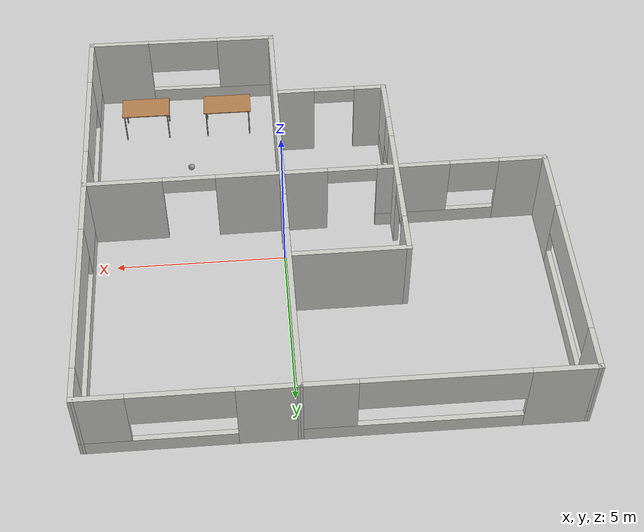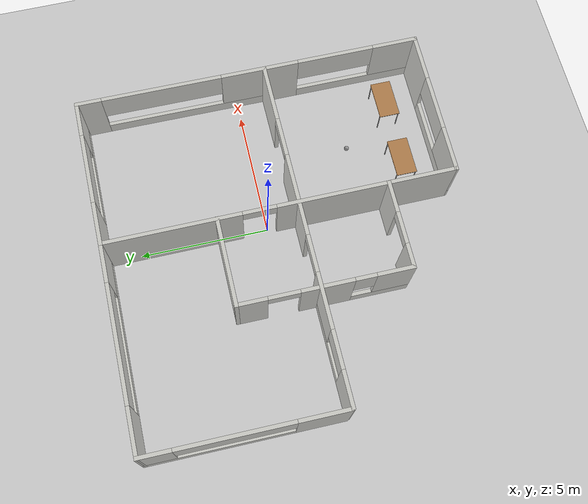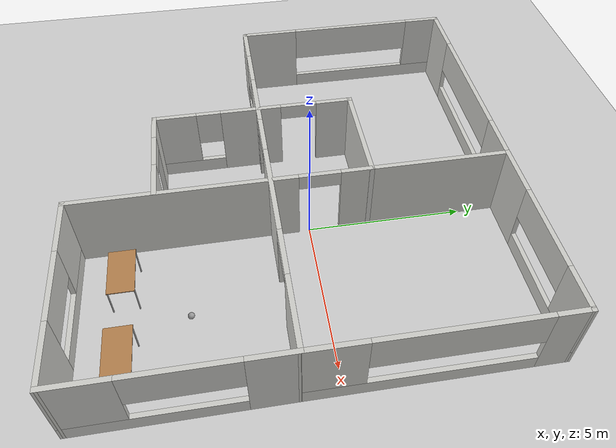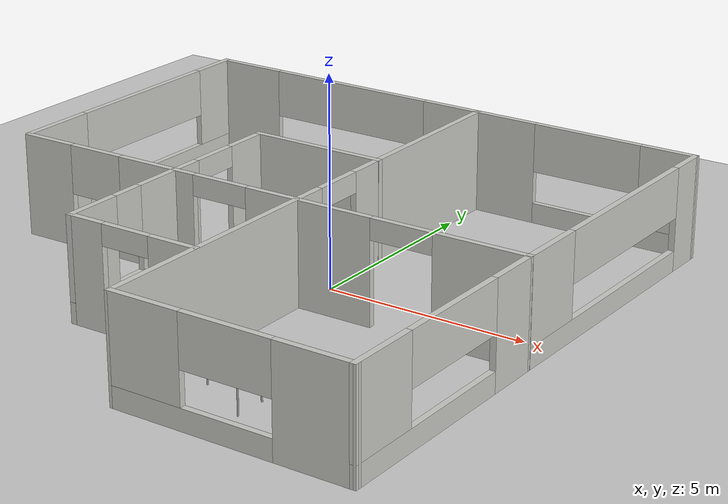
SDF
<sdf version="1.7">
 <world name="default">
  <model name="ground_plane">
   <static>1</static>
   <link name="link">
    <collision name="collision">
     <geometry><plane><normal>0 0 1</normal><size>100 100</size></plane></geometry>
     <surface>
      <contact><collide_bitmask>65535</collide_bitmask></contact>
      <friction><ode><mu>100</mu><mu2>50</mu2></ode></friction>
     </surface>
    </collision>
    <visual name="visual">
     <cast_shadows>0</cast_shadows>
     <geometry><plane><normal>0 0 1</normal><size>100 100</size></plane></geometry>
     <material>
      <script><uri>file://media/materials/scripts/gazebo.material</uri><name>Gazebo/Grey</name></script>
     </material>
    </visual>
   </link>
  </model>
  <model name="floor">
   <pose>-1.0352 -0.48407 0 0 -0 0</pose>
   <link name="Wall_0">
    <collision name="Wall_0_Collision">
     <geometry><box><size>3.5 0.15 2.5</size></box></geometry>
     <pose>0 0 1.25 0 -0 0</pose>
    </collision>
    <visual name="Wall_0_Visual">
     <pose>0 0 1.25 0 -0 0</pose>
     <geometry><box><size>3.5 0.15 2.5</size></box></geometry>
     <material>
      <script><uri>file://media/materials/scripts/gazebo.material</uri><name>Gazebo/CeilingTiled</name></script>
      <ambient>0.921569 0.807843 0.615686 1</ambient>
     </material>
     <meta><layer>0</layer></meta>
    </visual>
    <pose>-0.680453 2.40138 0 0 -0 0</pose>
   </link>
   <link name="Wall_10">
    <pose>3.86966 6.71461 0 0 -0 0</pose>
    <visual name="Wall_10_Visual_0">
     <pose>-2.10615 0 1.25 0 -0 0</pose>
     <geometry><box><size>1.71925 0.15 2.5</size></box></geometry>
     <material>
      <script><uri>file://media/materials/scripts/gazebo.material</uri><name>Gazebo/CeilingTiled</name></script>
      <ambient>0.996078 0.47451 0.0196078 1</ambient>
     </material>
     <meta><layer>0</layer></meta>
    </visual>
    <collision name="Wall_10_Collision_0">
     <geometry><box><size>1.71925 0.15 2.5</size></box></geometry>
     <pose>-2.10615 0 1.25 0 -0 0</pose>
    </collision>
    <visual name="Wall_10_Visual_1">
     <pose>0.859627 0 0.25 0 -0 0</pose>
     <geometry><box><size>4.2123 0.15 0.5</size></box></geometry>
     <material>
      <script><uri>file://media/materials/scripts/gazebo.material</uri><name>Gazebo/CeilingTiled</name></script>
      <ambient>0.996078 0.47451 0.0196078 1</ambient>
     </material>
     <meta><layer>0</layer></meta>
    </visual>
    <collision name="Wall_10_Collision_1">
     <geometry><box><size>4.2123 0.15 0.5</size></box></geometry>
     <pose>0.859627 0 0.25 0 -0 0</pose>
    </collision>
    <visual name="Wall_10_Visual_2">
     <pose>2.25525 0 1.5 0 -0 0</pose>
     <geometry><box><size>1.42105 0.15 2</size></box></geometry>
     <material>
      <script><uri>file://media/materials/scripts/gazebo.material</uri><name>Gazebo/CeilingTiled</name></script>
      <ambient>0.996078 0.47451 0.0196078 1</ambient>
     </material>
     <meta><layer>0</layer></meta>
    </visual>
    <collision name="Wall_10_Collision_2">
     <geometry><box><size>1.42105 0.15 2</size></box></geometry>
     <pose>2.25525 0 1.5 0 -0 0</pose>
    </collision>
    <visual name="Wall_10_Visual_3">
     <pose>0.1491 0 1.9 0 -0 0</pose>
     <geometry><box><size>2.79124 0.15 1.2</size></box></geometry>
     <material>
      <script><uri>file://media/materials/scripts/gazebo.material</uri><name>Gazebo/CeilingTiled</name></script>
      <ambient>0.996078 0.47451 0.0196078 1</ambient>
     </material>
     <meta><layer>0</layer></meta>
    </visual>
    <collision name="Wall_10_Collision_3">
     <geometry><box><size>2.79124 0.15 1.2</size></box></geometry>
     <pose>0.1491 0 1.9 0 -0 0</pose>
    </collision>
   </link>
   <link name="Wall_11">
    <pose>6.74514 3.02848 0 0 0 -1.57495</pose>
    <visual name="Wall_11_Visual_0">
     <pose>-3.24419 0 1.25 0 -0 0</pose>
     <geometry><box><size>1.03393 0.15 2.5</size></box></geometry>
     <material>
      <script><uri>file://media/materials/scripts/gazebo.material</uri><name>Gazebo/CeilingTiled</name></script>
      <ambient>0.996078 0.47451 0.0196078 1</ambient>
     </material>
     <meta><layer>0</layer></meta>
    </visual>
    <collision name="Wall_11_Collision_0">
     <geometry><box><size>1.03393 0.15 2.5</size></box></geometry>
     <pose>-3.24419 0 1.25 0 -0 0</pose>
    </collision>
    <visual name="Wall_11_Visual_1">
     <pose>0.516965 0 0.25 0 -0 0</pose>
     <geometry><box><size>6.48838 0.15 0.5</size></box></geometry>
     <material>
      <script><uri>file://media/materials/scripts/gazebo.material</uri><name>Gazebo/CeilingTiled</name></script>
      <ambient>0.996078 0.47451 0.0196078 1</ambient>
     </material>
     <meta><layer>0</layer></meta>
    </visual>
    <collision name="Wall_11_Collision_1">
     <geometry><box><size>6.48838 0.15 0.5</size></box></geometry>
     <pose>0.516965 0 0.25 0 -0 0</pose>
    </collision>
    <visual name="Wall_11_Visual_2">
     <pose>2.86792 0 1.5 0 -0 0</pose>
     <geometry><box><size>1.78646 0.15 2</size></box></geometry>
     <material>
      <script><uri>file://media/materials/scripts/gazebo.material</uri><name>Gazebo/CeilingTiled</name></script>
      <ambient>0.996078 0.47451 0.0196078 1</ambient>
     </material>
     <meta><layer>0</layer></meta>
    </visual>
    <collision name="Wall_11_Collision_2">
     <geometry><box><size>1.78646 0.15 2</size></box></geometry>
     <pose>2.86792 0 1.5 0 -0 0</pose>
    </collision>
    <visual name="Wall_11_Visual_3">
     <pose>-0.376266 0 1.9 0 -0 0</pose>
     <geometry><box><size>4.70192 0.15 1.2</size></box></geometry>
     <material>
      <script><uri>file://media/materials/scripts/gazebo.material</uri><name>Gazebo/CeilingTiled</name></script>
      <ambient>0.996078 0.47451 0.0196078 1</ambient>
     </material>
     <meta><layer>0</layer></meta>
    </visual>
    <collision name="Wall_11_Collision_3">
     <geometry><box><size>4.70192 0.15 1.2</size></box></geometry>
     <pose>-0.376266 0 1.9 0 -0 0</pose>
    </collision>
   </link>
   <link name="Wall_13">
    <pose>-6.76045 3.04378 0 0 -0 1.5708</pose>
    <visual name="Wall_13_Visual_0">
     <pose>-2.80286 0 1.25 0 -0 0</pose>
     <geometry><box><size>1.94712 0.15 2.5</size></box></geometry>
     <material>
      <script><uri>file://media/materials/scripts/gazebo.material</uri><name>Gazebo/CeilingTiled</name></script>
      <ambient>0.996078 0.47451 0.0196078 1</ambient>
     </material>
     <meta><layer>0</layer></meta>
    </visual>
    <collision name="Wall_13_Collision_0">
     <geometry><box><size>1.94712 0.15 2.5</size></box></geometry>
     <pose>-2.80286 0 1.25 0 -0 0</pose>
    </collision>
    <visual name="Wall_13_Visual_1">
     <pose>0.97356 0 0.25 0 -0 0</pose>
     <geometry><box><size>5.60571 0.15 0.5</size></box></geometry>
     <material>
      <script><uri>file://media/materials/scripts/gazebo.material</uri><name>Gazebo/CeilingTiled</name></script>
      <ambient>0.996078 0.47451 0.0196078 1</ambient>
     </material>
     <meta><layer>0</layer></meta>
    </visual>
    <collision name="Wall_13_Collision_1">
     <geometry><box><size>5.60571 0.15 0.5</size></box></geometry>
     <pose>0.97356 0 0.25 0 -0 0</pose>
    </collision>
    <visual name="Wall_13_Visual_2">
     <pose>3.1335 0 1.5 0 -0 0</pose>
     <geometry><box><size>1.28584 0.15 2</size></box></geometry>
     <material>
      <script><uri>file://media/materials/scripts/gazebo.material</uri><name>Gazebo/CeilingTiled</name></script>
      <ambient>0.996078 0.47451 0.0196078 1</ambient>
     </material>
     <meta><layer>0</layer></meta>
    </visual>
    <collision name="Wall_13_Collision_2">
     <geometry><box><size>1.28584 0.15 2</size></box></geometry>
     <pose>3.1335 0 1.5 0 -0 0</pose>
    </collision>
    <visual name="Wall_13_Visual_3">
     <pose>0.330641 0 1.9 0 -0 0</pose>
     <geometry><box><size>4.31987 0.15 1.2</size></box></geometry>
     <material>
      <script><uri>file://media/materials/scripts/gazebo.material</uri><name>Gazebo/CeilingTiled</name></script>
      <ambient>0.996078 0.47451 0.0196078 1</ambient>
     </material>
     <meta><layer>0</layer></meta>
    </visual>
    <collision name="Wall_13_Collision_3">
     <geometry><box><size>4.31987 0.15 1.2</size></box></geometry>
     <pose>0.330641 0 1.9 0 -0 0</pose>
    </collision>
   </link>
   <link name="Wall_14">
    <pose>-2.93667 6.7299 0 0 0 -0.004</pose>
    <visual name="Wall_14_Visual_0">
     <pose>-2.97598 0 1.25 0 -0 0</pose>
     <geometry><box><size>1.84566 0.15 2.5</size></box></geometry>
     <material>
      <script><uri>file://media/materials/scripts/gazebo.material</uri><name>Gazebo/CeilingTiled</name></script>
      <ambient>0.996078 0.47451 0.0196078 1</ambient>
     </material>
     <meta><layer>0</layer></meta>
    </visual>
    <collision name="Wall_14_Collision_0">
     <geometry><box><size>1.84566 0.15 2.5</size></box></geometry>
     <pose>-2.97598 0 1.25 0 -0 0</pose>
    </collision>
    <visual name="Wall_14_Visual_1">
     <pose>0.922833 0 0.25 0 -0 0</pose>
     <geometry><box><size>5.95195 0.15 0.5</size></box></geometry>
     <material>
      <script><uri>file://media/materials/scripts/gazebo.material</uri><name>Gazebo/CeilingTiled</name></script>
      <ambient>0.996078 0.47451 0.0196078 1</ambient>
     </material>
     <meta><layer>0</layer></meta>
    </visual>
    <collision name="Wall_14_Collision_1">
     <geometry><box><size>5.95195 0.15 0.5</size></box></geometry>
     <pose>0.922833 0 0.25 0 -0 0</pose>
    </collision>
    <visual name="Wall_14_Visual_2">
     <pose>3.15291 0 1.5 0 -0 0</pose>
     <geometry><box><size>1.49179 0.15 2</size></box></geometry>
     <material>
      <script><uri>file://media/materials/scripts/gazebo.material</uri><name>Gazebo/CeilingTiled</name></script>
      <ambient>0.996078 0.47451 0.0196078 1</ambient>
     </material>
     <meta><layer>0</layer></meta>
    </visual>
    <collision name="Wall_14_Collision_2">
     <geometry><box><size>1.49179 0.15 2</size></box></geometry>
     <pose>3.15291 0 1.5 0 -0 0</pose>
    </collision>
    <visual name="Wall_14_Visual_3">
     <pose>0.176935 0 1.9 0 -0 0</pose>
     <geometry><box><size>4.46016 0.15 1.2</size></box></geometry>
     <material>
      <script><uri>file://media/materials/scripts/gazebo.material</uri><name>Gazebo/CeilingTiled</name></script>
      <ambient>0.996078 0.47451 0.0196078 1</ambient>
     </material>
     <meta><layer>0</layer></meta>
    </visual>
    <collision name="Wall_14_Collision_3">
     <geometry><box><size>4.46016 0.15 1.2</size></box></geometry>
     <pose>0.176935 0 1.9 0 -0 0</pose>
    </collision>
   </link>
   <link name="Wall_16">
    <pose>-2.35545 -0.856476 0 0 0 -1.5708</pose>
    <visual name="Wall_16_Visual_0">
     <pose>-2.72153 0 1.25 0 -0 0</pose>
     <geometry><box><size>1.22295 0.15 2.5</size></box></geometry>
     <material>
      <script><uri>file://media/materials/scripts/gazebo.material</uri><name>Gazebo/CeilingTiled</name></script>
      <ambient>0.996078 0.47451 0.0196078 1</ambient>
     </material>
     <meta><layer>0</layer></meta>
    </visual>
    <collision name="Wall_16_Collision_0">
     <geometry><box><size>1.22295 0.15 2.5</size></box></geometry>
     <pose>-2.72153 0 1.25 0 -0 0</pose>
    </collision>
    <visual name="Wall_16_Visual_1">
     <pose>0.091031 0 1.25 0 -0 0</pose>
     <geometry><box><size>2.00077 0.15 2.5</size></box></geometry>
     <material>
      <script><uri>file://media/materials/scripts/gazebo.material</uri><name>Gazebo/CeilingTiled</name></script>
      <ambient>0.996078 0.47451 0.0196078 1</ambient>
     </material>
     <meta><layer>0</layer></meta>
    </visual>
    <collision name="Wall_16_Collision_1">
     <geometry><box><size>2.00077 0.15 2.5</size></box></geometry>
     <pose>0.091031 0 1.25 0 -0 0</pose>
    </collision>
    <visual name="Wall_16_Visual_2">
     <pose>2.21221 0 0.25 0 -0 0</pose>
     <geometry><box><size>2.24159 0.15 0.5</size></box></geometry>
     <material>
      <script><uri>file://media/materials/scripts/gazebo.material</uri><name>Gazebo/CeilingTiled</name></script>
      <ambient>0.996078 0.47451 0.0196078 1</ambient>
     </material>
     <meta><layer>0</layer></meta>
    </visual>
    <collision name="Wall_16_Collision_2">
     <geometry><box><size>2.24159 0.15 0.5</size></box></geometry>
     <pose>2.21221 0 0.25 0 -0 0</pose>
    </collision>
    <visual name="Wall_16_Visual_3">
     <pose>2.61221 0 1.5 0 -0 0</pose>
     <geometry><box><size>1.44159 0.15 2</size></box></geometry>
     <material>
      <script><uri>file://media/materials/scripts/gazebo.material</uri><name>Gazebo/CeilingTiled</name></script>
      <ambient>0.996078 0.47451 0.0196078 1</ambient>
     </material>
     <meta><layer>0</layer></meta>
    </visual>
    <collision name="Wall_16_Collision_3">
     <geometry><box><size>1.44159 0.15 2</size></box></geometry>
     <pose>2.61221 0 1.5 0 -0 0</pose>
    </collision>
    <visual name="Wall_16_Visual_4">
     <pose>1.49142 0 1.9 0 -0 0</pose>
     <geometry><box><size>0.8 0.15 1.2</size></box></geometry>
     <material>
      <script><uri>file://media/materials/scripts/gazebo.material</uri><name>Gazebo/CeilingTiled</name></script>
      <ambient>0.996078 0.47451 0.0196078 1</ambient>
     </material>
     <meta><layer>0</layer></meta>
    </visual>
    <collision name="Wall_16_Collision_4">
     <geometry><box><size>0.8 0.15 1.2</size></box></geometry>
     <pose>1.49142 0 1.9 0 -0 0</pose>
    </collision>
    <visual name="Wall_16_Visual_5">
     <pose>-1.5097 0 2.25 0 -0 0</pose>
     <geometry><box><size>1.2007 0.15 0.5</size></box></geometry>
     <material>
      <script><uri>file://media/materials/scripts/gazebo.material</uri><name>Gazebo/CeilingTiled</name></script>
      <ambient>0.996078 0.47451 0.0196078 1</ambient>
     </material>
     <meta><layer>0</layer></meta>
    </visual>
    <collision name="Wall_16_Collision_5">
     <geometry><box><size>1.2007 0.15 0.5</size></box></geometry>
     <pose>-1.5097 0 2.25 0 -0 0</pose>
    </collision>
   </link>
   <link name="Wall_19">
    <pose>-0.680453 -4.11433 0 0 -0 0</pose>
    <visual name="Wall_19_Visual_0">
     <pose>-1.25768 0 1.25 0 -0 0</pose>
     <geometry><box><size>0.984642 0.15 2.5</size></box></geometry>
     <material>
      <script><uri>file://media/materials/scripts/gazebo.material</uri><name>Gazebo/CeilingTiled</name></script>
      <ambient>0.921569 0.807843 0.615686 1</ambient>
     </material>
     <meta><layer>0</layer></meta>
    </visual>
    <collision name="Wall_19_Collision_0">
     <geometry><box><size>0.984642 0.15 2.5</size></box></geometry>
     <pose>-1.25768 0 1.25 0 -0 0</pose>
    </collision>
    <visual name="Wall_19_Visual_1">
     <pose>1.1158 0 1.25 0 -0 0</pose>
     <geometry><box><size>1.2684 0.15 2.5</size></box></geometry>
     <material>
      <script><uri>file://media/materials/scripts/gazebo.material</uri><name>Gazebo/CeilingTiled</name></script>
      <ambient>0.921569 0.807843 0.615686 1</ambient>
     </material>
     <meta><layer>0</layer></meta>
    </visual>
    <collision name="Wall_19_Collision_1">
     <geometry><box><size>1.2684 0.15 2.5</size></box></geometry>
     <pose>1.1158 0 1.25 0 -0 0</pose>
    </collision>
    <visual name="Wall_19_Visual_2">
     <pose>-0.141879 0 2.25 0 -0 0</pose>
     <geometry><box><size>1.24696 0.15 0.5</size></box></geometry>
     <material>
      <script><uri>file://media/materials/scripts/gazebo.material</uri><name>Gazebo/CeilingTiled</name></script>
      <ambient>0.921569 0.807843 0.615686 1</ambient>
     </material>
     <meta><layer>0</layer></meta>
    </visual>
    <collision name="Wall_19_Collision_2">
     <geometry><box><size>1.24696 0.15 0.5</size></box></geometry>
     <pose>-0.141879 0 2.25 0 -0 0</pose>
    </collision>
   </link>
   <link name="Wall_6">
    <pose>-5e-06 -0.68823 0 0 -0 0.004545</pose>
    <visual name="Wall_6_Visual_0">
     <pose>-6.09809 0 1.25 0 -0 0</pose>
     <geometry><box><size>1.41365 0.15 2.5</size></box></geometry>
     <material>
      <script><uri>file://media/materials/scripts/gazebo.material</uri><name>Gazebo/CeilingTiled</name></script>
      <ambient>0.921569 0.807843 0.615686 1</ambient>
     </material>
     <meta><layer>0</layer></meta>
    </visual>
    <collision name="Wall_6_Collision_0">
     <geometry><box><size>1.41365 0.15 2.5</size></box></geometry>
     <pose>-6.09809 0 1.25 0 -0 0</pose>
    </collision>
    <visual name="Wall_6_Visual_1">
     <pose>1.30078 0 1.25 0 -0 0</pose>
     <geometry><box><size>3.27649 0.15 2.5</size></box></geometry>
     <material>
      <script><uri>file://media/materials/scripts/gazebo.material</uri><name>Gazebo/CeilingTiled</name></script>
      <ambient>0.921569 0.807843 0.615686 1</ambient>
     </material>
     <meta><layer>0</layer></meta>
    </visual>
    <collision name="Wall_6_Collision_1">
     <geometry><box><size>3.27649 0.15 2.5</size></box></geometry>
     <pose>1.30078 0 1.25 0 -0 0</pose>
    </collision>
    <visual name="Wall_6_Visual_2">
     <pose>5.64099 0 1.25 0 -0 0</pose>
     <geometry><box><size>2.32786 0.15 2.5</size></box></geometry>
     <material>
      <script><uri>file://media/materials/scripts/gazebo.material</uri><name>Gazebo/CeilingTiled</name></script>
      <ambient>0.921569 0.807843 0.615686 1</ambient>
     </material>
     <meta><layer>0</layer></meta>
    </visual>
    <collision name="Wall_6_Collision_2">
     <geometry><box><size>2.32786 0.15 2.5</size></box></geometry>
     <pose>5.64099 0 1.25 0 -0 0</pose>
    </collision>
    <visual name="Wall_6_Visual_3">
     <pose>-3.59193 0 0.25 0 -0 0</pose>
     <geometry><box><size>3.59867 0.15 0.5</size></box></geometry>
     <material>
      <script><uri>file://media/materials/scripts/gazebo.material</uri><name>Gazebo/CeilingTiled</name></script>
      <ambient>0.921569 0.807843 0.615686 1</ambient>
     </material>
     <meta><layer>0</layer></meta>
    </visual>
    <collision name="Wall_6_Collision_3">
     <geometry><box><size>3.59867 0.15 0.5</size></box></geometry>
     <pose>-3.59193 0 0.25 0 -0 0</pose>
    </collision>
    <visual name="Wall_6_Visual_4">
     <pose>-2.86816 0 1.5 0 -0 0</pose>
     <geometry><box><size>2.15113 0.15 2</size></box></geometry>
     <material>
      <script><uri>file://media/materials/scripts/gazebo.material</uri><name>Gazebo/CeilingTiled</name></script>
      <ambient>0.921569 0.807843 0.615686 1</ambient>
     </material>
     <meta><layer>0</layer></meta>
    </visual>
    <collision name="Wall_6_Collision_4">
     <geometry><box><size>2.15113 0.15 2</size></box></geometry>
     <pose>-2.86816 0 1.5 0 -0 0</pose>
    </collision>
    <visual name="Wall_6_Visual_5">
     <pose>-4.6675 0 1.9 0 -0 0</pose>
     <geometry><box><size>1.44755 0.15 1.2</size></box></geometry>
     <material>
      <script><uri>file://media/materials/scripts/gazebo.material</uri><name>Gazebo/CeilingTiled</name></script>
      <ambient>0.921569 0.807843 0.615686 1</ambient>
     </material>
     <meta><layer>0</layer></meta>
    </visual>
    <collision name="Wall_6_Collision_5">
     <geometry><box><size>1.44755 0.15 1.2</size></box></geometry>
     <pose>-4.6675 0 1.9 0 -0 0</pose>
    </collision>
    <visual name="Wall_6_Visual_6">
     <pose>3.70804 0 2.25 0 -0 0</pose>
     <geometry><box><size>1.53804 0.15 0.5</size></box></geometry>
     <material>
      <script><uri>file://media/materials/scripts/gazebo.material</uri><name>Gazebo/CeilingTiled</name></script>
      <ambient>0.921569 0.807843 0.615686 1</ambient>
     </material>
     <meta><layer>0</layer></meta>
    </visual>
    <collision name="Wall_6_Collision_6">
     <geometry><box><size>1.53804 0.15 0.5</size></box></geometry>
     <pose>3.70804 0 2.25 0 -0 0</pose>
    </collision>
    <visual name="Wall_6_Visual_7">
     <pose>-1.06503 0 2.25 0 -0 0</pose>
     <geometry><box><size>1.45513 0.15 0.5</size></box></geometry>
     <material>
      <script><uri>file://media/materials/scripts/gazebo.material</uri><name>Gazebo/CeilingTiled</name></script>
      <ambient>0.921569 0.807843 0.615686 1</ambient>
     </material>
     <meta><layer>0</layer></meta>
    </visual>
    <collision name="Wall_6_Collision_7">
     <geometry><box><size>1.45513 0.15 0.5</size></box></geometry>
     <pose>-1.06503 0 2.25 0 -0 0</pose>
    </collision>
   </link>
   <link name="Wall_7">
    <pose>6.72985 -3.70137 0 0 0 -1.5708</pose>
    <visual name="Wall_7_Visual_0">
     <pose>-2.40595 0 1.25 0 -0 0</pose>
     <geometry><box><size>1.42563 0.15 2.5</size></box></geometry>
     <material>
      <script><uri>file://media/materials/scripts/gazebo.material</uri><name>Gazebo/CeilingTiled</name></script>
      <ambient>0.996078 0.47451 0.0196078 1</ambient>
     </material>
     <meta><layer>0</layer></meta>
    </visual>
    <collision name="Wall_7_Collision_0">
     <geometry><box><size>1.42563 0.15 2.5</size></box></geometry>
     <pose>-2.40595 0 1.25 0 -0 0</pose>
    </collision>
    <visual name="Wall_7_Visual_1">
     <pose>0.712816 0 0.25 0 -0 0</pose>
     <geometry><box><size>4.8119 0.15 0.5</size></box></geometry>
     <material>
      <script><uri>file://media/materials/scripts/gazebo.material</uri><name>Gazebo/CeilingTiled</name></script>
      <ambient>0.996078 0.47451 0.0196078 1</ambient>
     </material>
     <meta><layer>0</layer></meta>
    </visual>
    <collision name="Wall_7_Collision_1">
     <geometry><box><size>4.8119 0.15 0.5</size></box></geometry>
     <pose>0.712816 0 0.25 0 -0 0</pose>
    </collision>
    <visual name="Wall_7_Visual_2">
     <pose>2.21906 0 1.5 0 -0 0</pose>
     <geometry><box><size>1.79941 0.15 2</size></box></geometry>
     <material>
      <script><uri>file://media/materials/scripts/gazebo.material</uri><name>Gazebo/CeilingTiled</name></script>
      <ambient>0.996078 0.47451 0.0196078 1</ambient>
     </material>
     <meta><layer>0</layer></meta>
    </visual>
    <collision name="Wall_7_Collision_2">
     <geometry><box><size>1.79941 0.15 2</size></box></geometry>
     <pose>2.21906 0 1.5 0 -0 0</pose>
    </collision>
    <visual name="Wall_7_Visual_3">
     <pose>-0.186888 0 1.9 0 -0 0</pose>
     <geometry><box><size>3.01249 0.15 1.2</size></box></geometry>
     <material>
      <script><uri>file://media/materials/scripts/gazebo.material</uri><name>Gazebo/CeilingTiled</name></script>
      <ambient>0.996078 0.47451 0.0196078 1</ambient>
     </material>
     <meta><layer>0</layer></meta>
    </visual>
    <collision name="Wall_7_Collision_3">
     <geometry><box><size>3.01249 0.15 1.2</size></box></geometry>
     <pose>-0.186888 0 1.9 0 -0 0</pose>
    </collision>
   </link>
   <link name="Wall_8">
    <pose>3.86966 -6.7298 0 0 -0 3.13625</pose>
    <visual name="Wall_8_Visual_0">
     <pose>-1.99488 0 1.25 0 -0 0</pose>
     <geometry><box><size>1.8807 0.15 2.5</size></box></geometry>
     <material>
      <script><uri>file://media/materials/scripts/gazebo.material</uri><name>Gazebo/CeilingTiled</name></script>
      <ambient>0.996078 0.47451 0.0196078 1</ambient>
     </material>
     <meta><layer>0</layer></meta>
    </visual>
    <collision name="Wall_8_Collision_0">
     <geometry><box><size>1.8807 0.15 2.5</size></box></geometry>
     <pose>-1.99488 0 1.25 0 -0 0</pose>
    </collision>
    <visual name="Wall_8_Visual_1">
     <pose>0.940351 0 0.25 0 -0 0</pose>
     <geometry><box><size>3.98975 0.15 0.5</size></box></geometry>
     <material>
      <script><uri>file://media/materials/scripts/gazebo.material</uri><name>Gazebo/CeilingTiled</name></script>
      <ambient>0.996078 0.47451 0.0196078 1</ambient>
     </material>
     <meta><layer>0</layer></meta>
    </visual>
    <collision name="Wall_8_Collision_1">
     <geometry><box><size>3.98975 0.15 0.5</size></box></geometry>
     <pose>0.940351 0 0.25 0 -0 0</pose>
    </collision>
    <visual name="Wall_8_Visual_2">
     <pose>2.03431 0 1.5 0 -0 0</pose>
     <geometry><box><size>1.80183 0.15 2</size></box></geometry>
     <material>
      <script><uri>file://media/materials/scripts/gazebo.material</uri><name>Gazebo/CeilingTiled</name></script>
      <ambient>0.996078 0.47451 0.0196078 1</ambient>
     </material>
     <meta><layer>0</layer></meta>
    </visual>
    <collision name="Wall_8_Collision_2">
     <geometry><box><size>1.80183 0.15 2</size></box></geometry>
     <pose>2.03431 0 1.5 0 -0 0</pose>
    </collision>
    <visual name="Wall_8_Visual_3">
     <pose>0.039436 0 1.9 0 -0 0</pose>
     <geometry><box><size>2.18792 0.15 1.2</size></box></geometry>
     <material>
      <script><uri>file://media/materials/scripts/gazebo.material</uri><name>Gazebo/CeilingTiled</name></script>
      <ambient>0.996078 0.47451 0.0196078 1</ambient>
     </material>
     <meta><layer>0</layer></meta>
    </visual>
    <collision name="Wall_8_Collision_3">
     <geometry><box><size>2.18792 0.15 1.2</size></box></geometry>
     <pose>0.039436 0 1.9 0 -0 0</pose>
    </collision>
   </link>
   <link name="Wall_9">
    <pose>0.994177 5e-05 0 0 -0 1.57307</pose>
    <visual name="Wall_9_Visual_0">
     <pose>-3.31645 0 1.25 0 -0 0</pose>
     <geometry><box><size>6.94625 0.15 2.5</size></box></geometry>
     <material>
      <script><uri>file://media/materials/scripts/gazebo.material</uri><name>Gazebo/CeilingTiled</name></script>
      <ambient>0.921569 0.807843 0.615686 1</ambient>
     </material>
     <meta><layer>0</layer></meta>
    </visual>
    <collision name="Wall_9_Collision_0">
     <geometry><box><size>6.94625 0.15 2.5</size></box></geometry>
     <pose>-3.31645 0 1.25 0 -0 0</pose>
    </collision>
    <visual name="Wall_9_Visual_1">
     <pose>4.11974 0 1.25 0 -0 0</pose>
     <geometry><box><size>5.33967 0.15 2.5</size></box></geometry>
     <material>
      <script><uri>file://media/materials/scripts/gazebo.material</uri><name>Gazebo/CeilingTiled</name></script>
      <ambient>0.921569 0.807843 0.615686 1</ambient>
     </material>
     <meta><layer>0</layer></meta>
    </visual>
    <collision name="Wall_9_Collision_1">
     <geometry><box><size>5.33967 0.15 2.5</size></box></geometry>
     <pose>4.11974 0 1.25 0 -0 0</pose>
    </collision>
    <visual name="Wall_9_Visual_2">
     <pose>0.803289 0 2.25 0 -0 0</pose>
     <geometry><box><size>1.29322 0.15 0.5</size></box></geometry>
     <material>
      <script><uri>file://media/materials/scripts/gazebo.material</uri><name>Gazebo/CeilingTiled</name></script>
      <ambient>0.921569 0.807843 0.615686 1</ambient>
     </material>
     <meta><layer>0</layer></meta>
    </visual>
    <collision name="Wall_9_Collision_2">
     <geometry><box><size>1.29322 0.15 0.5</size></box></geometry>
     <pose>0.803289 0 2.25 0 -0 0</pose>
    </collision>
   </link>
   <static>1</static>
  </model>
  <model name="table_clone_1">
   <static>1</static>
   <link name="link">
    <collision name="surface">
     <pose>0 0 1 0 -0 0</pose>
     <geometry><box><size>1.5 0.8 0.03</size></box></geometry>
     <surface><friction><ode><mu>0.6</mu><mu2>0.6</mu2></ode></friction></surface>
    </collision>
    <visual name="visual1">
     <pose>0 0 1 0 -0 0</pose>
     <geometry><box><size>1.5 0.8 0.03</size></box></geometry>
     <material>
      <script><uri>file://media/materials/scripts/gazebo.material</uri><name>Gazebo/Wood</name></script>
     </material>
    </visual>
    <collision name="front_left_leg">
     <pose>0.68 0.38 0.5 0 -0 0</pose>
     <geometry><cylinder><radius>0.02</radius><length>1</length></cylinder></geometry>
    </collision>
    <visual name="front_left_leg">
     <pose>0.68 0.38 0.5 0 -0 0</pose>
     <geometry><cylinder><radius>0.02</radius><length>1</length></cylinder></geometry>
     <material>
      <script><uri>file://media/materials/scripts/gazebo.material</uri><name>Gazebo/Grey</name></script>
     </material>
    </visual>
    <collision name="front_right_leg">
     <pose>0.68 -0.38 0.5 0 -0 0</pose>
     <geometry><cylinder><radius>0.02</radius><length>1</length></cylinder></geometry>
    </collision>
    <visual name="front_right_leg">
     <pose>0.68 -0.38 0.5 0 -0 0</pose>
     <geometry><cylinder><radius>0.02</radius><length>1</length></cylinder></geometry>
     <material>
      <script><uri>file://media/materials/scripts/gazebo.material</uri><name>Gazebo/Grey</name></script>
     </material>
    </visual>
    <collision name="back_right_leg">
     <pose>-0.68 -0.38 0.5 0 -0 0</pose>
     <geometry><cylinder><radius>0.02</radius><length>1</length></cylinder></geometry>
    </collision>
    <visual name="back_right_leg">
     <pose>-0.68 -0.38 0.5 0 -0 0</pose>
     <geometry><cylinder><radius>0.02</radius><length>1</length></cylinder></geometry>
     <material>
      <script><uri>file://media/materials/scripts/gazebo.material</uri><name>Gazebo/Grey</name></script>
     </material>
    </visual>
    <collision name="back_left_leg">
     <pose>-0.68 0.38 0.5 0 -0 0</pose>
     <geometry><cylinder><radius>0.02</radius><length>1</length></cylinder></geometry>
    </collision>
    <visual name="back_left_leg">
     <pose>-0.68 0.38 0.5 0 -0 0</pose>
     <geometry><cylinder><radius>0.02</radius><length>1</length></cylinder></geometry>
     <material>
      <script><uri>file://media/materials/scripts/gazebo.material</uri><name>Gazebo/Grey</name></script>
     </material>
    </visual>
   </link>
   <pose>1.50221 -5.75834 0 0 -0 0</pose>
  </model>
  <model name="table_clone_2">
   <static>1</static>
   <link name="link">
    <collision name="surface">
     <pose>0 0 1 0 -0 0</pose>
     <geometry><box><size>1.5 0.8 0.03</size></box></geometry>
     <surface><friction><ode><mu>0.6</mu><mu2>0.6</mu2></ode></friction></surface>
    </collision>
    <visual name="visual1">
     <pose>0 0 1 0 -0 0</pose>
     <geometry><box><size>1.5 0.8 0.03</size></box></geometry>
     <material>
      <script><uri>file://media/materials/scripts/gazebo.material</uri><name>Gazebo/Wood</name></script>
     </material>
    </visual>
    <collision name="front_left_leg">
     <pose>0.68 0.38 0.5 0 -0 0</pose>
     <geometry><cylinder><radius>0.02</radius><length>1</length></cylinder></geometry>
    </collision>
    <visual name="front_left_leg">
     <pose>0.68 0.38 0.5 0 -0 0</pose>
     <geometry><cylinder><radius>0.02</radius><length>1</length></cylinder></geometry>
     <material>
      <script><uri>file://media/materials/scripts/gazebo.material</uri><name>Gazebo/Grey</name></script>
     </material>
    </visual>
    <collision name="front_right_leg">
     <pose>0.68 -0.38 0.5 0 -0 0</pose>
     <geometry><cylinder><radius>0.02</radius><length>1</length></cylinder></geometry>
    </collision>
    <visual name="front_right_leg">
     <pose>0.68 -0.38 0.5 0 -0 0</pose>
     <geometry><cylinder><radius>0.02</radius><length>1</length></cylinder></geometry>
     <material>
      <script><uri>file://media/materials/scripts/gazebo.material</uri><name>Gazebo/Grey</name></script>
     </material>
    </visual>
    <collision name="back_right_leg">
     <pose>-0.68 -0.38 0.5 0 -0 0</pose>
     <geometry><cylinder><radius>0.02</radius><length>1</length></cylinder></geometry>
    </collision>
    <visual name="back_right_leg">
     <pose>-0.68 -0.38 0.5 0 -0 0</pose>
     <geometry><cylinder><radius>0.02</radius><length>1</length></cylinder></geometry>
     <material>
      <script><uri>file://media/materials/scripts/gazebo.material</uri><name>Gazebo/Grey</name></script>
     </material>
    </visual>
    <collision name="back_left_leg">
     <pose>-0.68 0.38 0.5 0 -0 0</pose>
     <geometry><cylinder><radius>0.02</radius><length>1</length></cylinder></geometry>
    </collision>
    <visual name="back_left_leg">
     <pose>-0.68 0.38 0.5 0 -0 0</pose>
     <geometry><cylinder><radius>0.02</radius><length>1</length></cylinder></geometry>
     <material>
      <script><uri>file://media/materials/scripts/gazebo.material</uri><name>Gazebo/Grey</name></script>
     </material>
    </visual>
   </link>
   <pose>4.10687 -5.77905 0 0 -0 0</pose>
  </model>
  <model name="my_ball">
   <link name="link_0">
    <inertial>
     <mass>1</mass>
     <inertia><ixx>0.1</ixx><ixy>0</ixy><ixz>0</ixz><iyy>0.1</iyy><iyz>0</iyz><izz>0.1</izz></inertia>
    </inertial>
    <visual name="visual">
     <geometry><sphere><radius>0.0999999</radius></sphere></geometry>
     <material>
      <lighting>1</lighting>
      <script><uri>file://media/materials/scripts/gazebo.material</uri><name>Gazebo/Grey</name></script>
      <shader type="pixel"><normal_map>__default__</normal_map></shader>
      <ambient>1 1 1 1</ambient>
      <diffuse>1 1 1 1</diffuse>
      <specular>1 1 1 1</specular>
      <emissive>1 1 1 1</emissive>
     </material>
    </visual>
    <collision name="collision">
     <geometry><sphere><radius>0.0999999</radius></sphere></geometry>
     <surface>
      <friction>
       <ode><mu>1</mu><mu2>1</mu2><fdir1>0 0 0</fdir1><slip1>0</slip1><slip2>0</slip2></ode>
       <torsional>
        <coefficient>1</coefficient>
        <patch_radius>0</patch_radius>
        <surface_radius>0</surface_radius>
        <use_patch_radius>1</use_patch_radius>
        <ode><slip>0</slip></ode>
       </torsional>
      </friction>
      <bounce><restitution_coefficient>0</restitution_coefficient><threshold>1e+06</threshold></bounce>
      <contact>
       <collide_without_contact>0</collide_without_contact>
       <collide_without_contact_bitmask>1</collide_without_contact_bitmask>
       <collide_bitmask>1</collide_bitmask>
       <ode>
        <soft_cfm>0</soft_cfm>
        <soft_erp>0.2</soft_erp>
        <kp>1e+13</kp>
        <kd>1</kd>
        <max_vel>0.01</max_vel>
        <min_depth>0</min_depth>
       </ode>
       <bullet>
        <split_impulse>1</split_impulse>
        <split_impulse_penetration_threshold>-0.01</split_impulse_penetration_threshold>
        <soft_cfm>0</soft_cfm>
        <soft_erp>0.2</soft_erp>
        <kp>1e+13</kp>
        <kd>1</kd>
       </bullet>
      </contact>
     </surface>
    </collision>
   </link>
   <static>0</static>
   <pose>2.72862 -3.90258 0.1 0 -0 0</pose>
  </model>
 </world>
</sdf>
